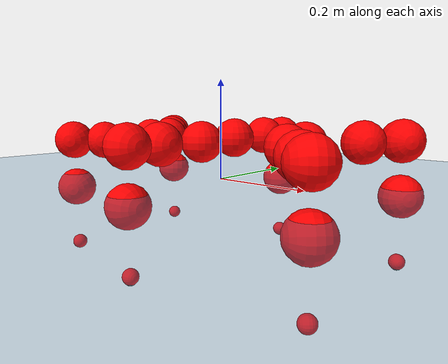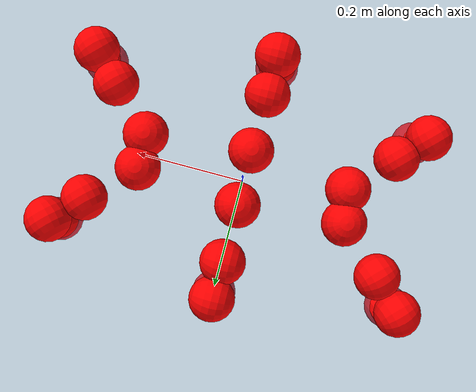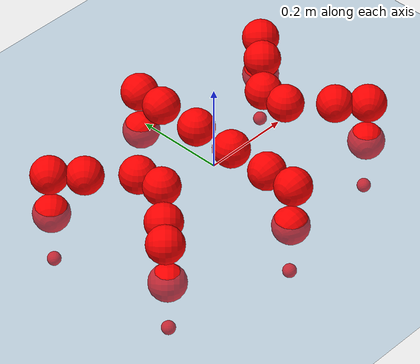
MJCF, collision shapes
<mujoco model="Golem">
  <compiler angle="radian" assetdir="assets" balanceinertia="true" inertiafromgeom="false"/>

  <option timestep="0.005" density="1.2" viscosity="2e-05"/>

  <size nkey="1"/>

  <visual>
    <quality shadowsize="8192"/>
    <map shadowclip="0.5"/>
  </visual>

  <default>
    <default class="/">
      <joint armature="0.01" damping="0.01" frictionloss="0.01"/>
      <geom contype="0" conaffinity="0" group="1" solref="-1000 -80"/>
      <site size="0.01 0.005 0.005" group="5"/>
      <general forcelimited="true" biastype="affine" gainprm="25" biasprm="0 -25 -0.5"/>
      <default class="visual">
        <geom type="mesh" group="2"/>
      </default>
      <default class="collision">
        <geom group="3"/>
      </default>
      <default class="foot">
        <geom size="0.01 0 0" condim="6" group="4" priority="1" solimp="0.015 1 0.01"/>
      </default>
      <default class="reward_collision_sphere">
        <geom group="5" rgba="1 0 0 1"/>
      </default>
    </default>
  </default>

  <asset>
    <texture type="skybox" colorspace="auto" name="//unnamed_texture_0" builtin="gradient" rgb1="0.95 0.95 0.95" rgb2="0.95 0.95 0.95" width="100" height="600"/>
    <texture type="2d" colorspace="auto" name="texplane" builtin="checker" rgb1="0.345 0.575 0.748" rgb2="0.345 0.575 0.748" markrgb="1 1 1" width="512" height="512"/>
    <material name="MatPlane" class="/" texture="texplane" texuniform="true" texrepeat="2 2" specular="0.9"/>
    <mesh name="body" class="/" file="body.stl" scale="0.001 0.001 0.001"/>
    <mesh name="coxa" class="/" file="coxa.stl" scale="0.001 0.001 0.001"/>
    <mesh name="femur" class="/" file="femur.stl" scale="0.001 0.001 0.001"/>
    <mesh name="tibia" class="/" file="tibia.stl" scale="0.001 0.001 0.001"/>
    <mesh name="tarsus" class="/" file="tarsus.stl" scale="0.001 0.001 0.001"/>
  </asset>

  <worldbody>
    <geom name="floor" class="/" size="100 100 0.125" type="plane" group="0" material="MatPlane"/>
    <light name="toplight_shadow" class="/" pos="0 0 5" dir="0.0990148 0.0990148 -0.990148" type="directional" ambient="0.04 0.04 0.04" diffuse="0.55 0.55 0.55" specular="0.12 0.12 0.12"/>
    <light name="toplight_fill" class="/" pos="0 0 5" dir="0.0990148 0.0990148 -0.990148" type="directional" castshadow="false" ambient="0.04 0.04 0.04" diffuse="0.3 0.3 0.3" specular="0.08 0.08 0.08"/>
    <body name="trunk" pos="-0.00278164 -0.000743192 0.00019331" quat="1 -4.18924e-05 -0.000277081 -8.01516e-05">
      <inertial pos="0.00318051 -0.000469524 -0.000998982" quat="0.99994 -0.00270071 -0.000263611 -0.0105873" mass="3.88765" diaginertia="0.0223867 0.00114529 0.0268836"/>
      <joint name="//unnamed_joint_0" type="free"/>
      <geom name="//unnamed_geom_1" class="/" pos="0 0 0.0776398" quat="1 0 0 0" type="mesh" rgba="0.9 0.9 0.9 1" mesh="body"/>
      <site name="imu" class="/" pos="0.149365 0.00198257 0.130892" size="0.0101126"/>
      <camera name="track" class="/" pos="0 -1.29191 0" quat="0.707107 0.707107 0 0" mode="trackcom"/>
      <camera name="ego_camera" class="/" pos="0.152713 0 0.121312" quat="-0.5 -0.5 0.5 0.5"/>
      <body name="coxa_RR" pos="-0.205116 -0.0542087 0.0772309" quat="0.382579 5.51985e-05 -5.33192e-05 -0.923923">
        <inertial pos="0.000411834 4.85163e-06 6.57773e-05" quat="0.999984 0.0048149 -0.00278195 0.00141202" mass="0.210899" diaginertia="0.0220451 0.00115598 0.0274276"/>
        <joint name="coxa_joint_RR" class="/" pos="0 0 0" axis="0.00716741 0.00461838 -0.999964" stiffness="0.00399493" range="-3.13332 3.09067" armature="0.00870043" damping="0.00388453" frictionloss="0.0101169"/>
        <geom name="//unnamed_geom_2" class="/" type="mesh" rgba="0.2 0.2 0.2 1" mesh="coxa"/>
        <geom name="//unnamed_geom_3" class="reward_collision_sphere" size="0.0404506" pos="-0.0352415 0 0"/>
        <body name="femur_RR" pos="0.0666467 0.00350034 -0.00545224" quat="0.500106 -0.499517 0.499866 0.500511">
          <inertial pos="-0.0016624 0.00245201 -0.00281266" quat="1 -0.000577888 -0.000603355 0.000189842" mass="0.210117" diaginertia="0.0226547 0.00112498 0.0263665"/>
          <joint name="femur_joint_RR" class="/" pos="0 0 0" axis="0.00172995 0.000912816 -0.999998" range="-3.10578 3.12688" armature="0.00895242" damping="0.0188166" frictionloss="0.011254"/>
          <geom name="//unnamed_geom_4" class="/" type="mesh" rgba="0.9 0.9 0.9 1" mesh="femur"/>
          <geom name="//unnamed_geom_5" class="reward_collision_sphere" size="0.0404506"/>
          <body name="tibia_RR" pos="-0.00101273 -0.0676663 0.00252163" quat="-0.000775972 0.999999 0.000998159 1.54586e-05">
            <inertial pos="-0.00114488 -0.00230033 0.000211178" quat="0.999949 -0.00356015 -0.00100979 0.00936205" mass="0.207372" diaginertia="0.0216132 0.00112097 0.0259494"/>
            <joint name="tibia_joint_RR" class="/" pos="0 0 0" axis="0.0099898 0.00855815 0.999913" stiffness="0.0106639" range="-3.14221 3.08495" armature="0.00914465" damping="0.000743145" frictionloss="0.00993569"/>
            <geom name="//unnamed_geom_6" class="/" type="mesh" rgba="0.2 0.2 0.2 1" mesh="tibia"/>
            <geom name="//unnamed_geom_7" class="reward_collision_sphere" size="0.0404506"/>
            <body name="tarsus_RR" pos="0.104358 -0.00218189 -0.00311436" quat="1 -0.000819803 8.95693e-05 5.14635e-05">
              <inertial pos="0.0720646 0.000979179 -0.00204689" quat="0.497276 0.499653 0.510159 0.492748" mass="0.207237" diaginertia="0.0228046 0.00117402 0.0266657"/>
              <joint name="tarsus_joint_RR" class="/" pos="0 0 0" axis="0.00369026 -0.00273685 0.999989" stiffness="0.00817218" range="-3.13541 3.13843" armature="0.0112754" damping="0.0124353" frictionloss="0.0110324"/>
              <geom name="//unnamed_geom_8" class="/" type="mesh" rgba="0.9 0.9 0.9 1" mesh="tarsus"/>
              <geom name="foot_1" class="foot" size="0.00908223" pos="0.131568 0 0" quat="0 -0.707107 0 0.707107"/>
              <geom name="//unnamed_geom_10" class="reward_collision_sphere" size="0.0404506"/>
              <geom name="//unnamed_geom_11" class="reward_collision_sphere" size="0.015169" pos="0.126282 0 0"/>
              <site name="foot_1" class="foot" pos="0.131568 0 0" quat="0 -0.707107 0 0.707107" size="0.0101126"/>
            </body>
          </body>
        </body>
      </body>
      <body name="coxa_RM" pos="0.000859656 -0.0867614 0.0785497" quat="0.707277 4.47947e-05 0.000141184 -0.706936">
        <inertial pos="-0.00106969 0.000231503 -0.00235721" quat="0.999999 0.00046466 -0.000972784 0.000511076" mass="0.200321" diaginertia="0.0224135 0.0010964 0.0250367"/>
        <joint name="coxa_joint_RM" class="/" pos="0 0 0" axis="0.00249019 -0.00141156 -0.999996" range="-3.1258 3.13877" armature="0.00877686" damping="0.0236016" frictionloss="0.0101534"/>
        <geom name="//unnamed_geom_12" class="/" type="mesh" rgba="0.2 0.2 0.2 1" mesh="coxa"/>
        <geom name="//unnamed_geom_13" class="reward_collision_sphere" size="0.0404506" pos="-0.0352415 0 0"/>
        <body name="femur_RM" pos="0.0667427 -0.00262184 0.0020226" quat="0.499879 -0.500343 0.49973 0.500048">
          <inertial pos="0.00250946 -0.00293327 0.00242051" quat="0.999986 0.00304 -0.00342224 0.00251058" mass="0.212291" diaginertia="0.0229024 0.00112178 0.0270391"/>
          <joint name="femur_joint_RM" class="/" pos="0 0 0" axis="4.81578e-05 -0.00506981 -0.999987" stiffness="0.00191465" range="-3.12256 3.1409" armature="0.0102386" damping="0.00641006" frictionloss="0.00877546"/>
          <geom name="//unnamed_geom_14" class="/" type="mesh" rgba="0.9 0.9 0.9 1" mesh="femur"/>
          <geom name="//unnamed_geom_15" class="reward_collision_sphere" size="0.0404506"/>
          <body name="tibia_RM" pos="-0.00144735 -0.0715826 0.000218894" quat="0.000246497 1 0.00012591 -4.66158e-05">
            <inertial pos="-0.00285592 -0.00120356 -0.000971124" quat="0.999976 0.00450041 0.00485461 0.00192759" mass="0.206439" diaginertia="0.0220795 0.00112729 0.0271559"/>
            <joint name="tibia_joint_RM" class="/" pos="0 0 0" axis="-0.00149022 -0.0130744 0.999913" range="-3.0936 3.1664" armature="0.0114914" damping="0.00908845" frictionloss="0.00967007"/>
            <geom name="//unnamed_geom_16" class="/" type="mesh" rgba="0.2 0.2 0.2 1" mesh="tibia"/>
            <geom name="//unnamed_geom_17" class="reward_collision_sphere" size="0.0404506"/>
            <body name="tarsus_RM" pos="0.103471 -0.000358246 0.00342308" quat="0.999999 0.000905317 0.000426287 -0.000388">
              <inertial pos="0.0732138 -0.000181171 0.00295845" quat="0.499934 0.5 0.500012 0.500055" mass="0.202898" diaginertia="0.0217972 0.00111077 0.0246578"/>
              <joint name="tarsus_joint_RM" class="/" pos="0 0 0" axis="0.0132059 -0.00549691 0.999898" range="-3.12225 3.11752" armature="0.0115183" damping="0.0153824" frictionloss="0.0100417"/>
              <geom name="//unnamed_geom_18" class="/" type="mesh" rgba="0.9 0.9 0.9 1" mesh="tarsus"/>
              <geom name="foot_2" class="foot" size="0.0111405" pos="0.131568 0 0" quat="0 -0.707107 0 0.707107"/>
              <geom name="//unnamed_geom_20" class="reward_collision_sphere" size="0.0404506"/>
              <geom name="//unnamed_geom_21" class="reward_collision_sphere" size="0.015169" pos="0.126282 0 0"/>
              <site name="foot_2" class="foot" pos="0.131568 0 0" quat="0 -0.707107 0 0.707107" size="0.0101126"/>
            </body>
          </body>
        </body>
      </body>
      <body name="coxa_RF" pos="0.211697 -0.0566595 0.0788469" quat="0.923874 0.00117395 -3.76319e-05 -0.382695">
        <inertial pos="-0.000842301 0.00159229 0.00159292" quat="0.999908 -0.00679595 0.00508293 0.0106277" mass="0.209087" diaginertia="0.0213068 0.00112547 0.0250552"/>
        <joint name="coxa_joint_RF" class="/" pos="0 0 0" axis="-0.00750579 0.00581018 -0.999955" range="-3.19236 3.14149" armature="0.00915103" damping="0.0221774" frictionloss="0.0114197"/>
        <geom name="//unnamed_geom_22" class="/" type="mesh" rgba="0.2 0.2 0.2 1" mesh="coxa"/>
        <geom name="//unnamed_geom_23" class="reward_collision_sphere" size="0.0404506" pos="-0.0352415 0 0"/>
        <body name="femur_RF" pos="0.0695288 0.000419531 -0.00300771" quat="0.500331 -0.499621 0.499901 0.500147">
          <inertial pos="-0.000274525 -0.00298601 7.12487e-05" quat="1 -2.40795e-05 -0.000268472 -0.00026768" mass="0.205828" diaginertia="0.0226784 0.00110609 0.0256872"/>
          <joint name="femur_joint_RF" class="/" pos="0 0 0" axis="-0.00229305 -0.00197772 -0.999995" stiffness="0.00664453" range="-3.08622 3.13344" armature="0.0106829" damping="0" frictionloss="0.0104606"/>
          <geom name="//unnamed_geom_24" class="/" type="mesh" rgba="0.9 0.9 0.9 1" mesh="femur"/>
          <geom name="//unnamed_geom_25" class="reward_collision_sphere" size="0.0404506"/>
          <body name="tibia_RF" pos="-0.000327215 -0.0694577 -0.000303107" quat="0.000187616 1 0.000129857 -0.000112267">
            <inertial pos="-0.000262171 -0.00122326 -0.000203135" quat="0.99999 -0.00312684 -0.00242708 0.0018933" mass="0.199308" diaginertia="0.0211751 0.00108816 0.0253999"/>
            <joint name="tibia_joint_RF" class="/" pos="0 0 0" axis="0.0126197 -0.00603232 0.999902" range="-3.08908 3.12424" armature="0.00977374" damping="0" frictionloss="0.0114726"/>
            <geom name="//unnamed_geom_26" class="/" type="mesh" rgba="0.2 0.2 0.2 1" mesh="tibia"/>
            <geom name="//unnamed_geom_27" class="reward_collision_sphere" size="0.0404506"/>
            <body name="tarsus_RF" pos="0.103824 0.000345632 -0.000705199" quat="0.999999 0.000504774 0.000902329 0.000381062">
              <inertial pos="0.0697396 -0.00274956 0.00110611" quat="0.499172 0.50415 0.500619 0.496025" mass="0.202854" diaginertia="0.0216644 0.00111629 0.0254515"/>
              <joint name="tarsus_joint_RF" class="/" pos="0 0 0" axis="0.00901023 -0.0106603 0.999903" range="-3.17386 3.1492" armature="0.0101897" damping="0" frictionloss="0.00950135"/>
              <geom name="//unnamed_geom_28" class="/" type="mesh" rgba="0.9 0.9 0.9 1" mesh="tarsus"/>
              <geom name="foot_3" class="foot" size="0.0102189" pos="0.131568 0 0" quat="0 -0.707107 0 0.707107"/>
              <geom name="//unnamed_geom_30" class="reward_collision_sphere" size="0.0404506"/>
              <geom name="//unnamed_geom_31" class="reward_collision_sphere" size="0.015169" pos="0.126282 0 0"/>
              <site name="foot_3" class="foot" pos="0.131568 0 0" quat="0 -0.707107 0 0.707107" size="0.0101126"/>
            </body>
          </body>
        </body>
      </body>
      <body name="coxa_LR" pos="-0.213047 0.0548302 0.0776056" quat="0.382843 -0.000696609 0.000559301 0.923813">
        <inertial pos="0.00290053 -0.000116438 0.000977044" quat="1 1.4103e-06 -2.6093e-06 -4.28363e-07" mass="0.202249" diaginertia="0.0226599 0.00115691 0.0263246"/>
        <joint name="coxa_joint_LR" class="/" pos="0 0 0" axis="0.0151313 0.0129399 -0.999802" stiffness="0.0142308" range="-3.12401 3.19397" armature="0.0110408" damping="0.00287123" frictionloss="0.0113899"/>
        <geom name="//unnamed_geom_32" class="/" type="mesh" rgba="0.2 0.2 0.2 1" mesh="coxa"/>
        <geom name="//unnamed_geom_33" class="reward_collision_sphere" size="0.0404506" pos="-0.0352415 0 0"/>
        <body name="femur_LR" pos="0.0729708 0.00212427 0.00183414" quat="0.499578 -0.500756 0.500173 0.499492">
          <inertial pos="-0.00116159 -0.00020267 0.000219887" quat="1 7.49376e-05 2.8909e-05 0.00013147" mass="0.214889" diaginertia="0.023952 0.00117574 0.0263765"/>
          <joint name="femur_joint_LR" class="/" pos="0 0 0" axis="-0.000504794 0.00067245 1" range="-3.18503 3.09982" armature="0.00935855" damping="0" frictionloss="0.00944021"/>
          <geom name="//unnamed_geom_34" class="/" type="mesh" rgba="0.9 0.9 0.9 1" mesh="femur"/>
          <geom name="//unnamed_geom_35" class="reward_collision_sphere" size="0.0404506"/>
          <body name="tibia_LR" pos="-0.000862668 -0.0720883 -0.00249581" quat="-0.000121094 1 -1.74201e-05 0.000389904">
            <inertial pos="0.000315019 -0.000213756 0.000601841" quat="0.999903 -0.00723162 0.00133401 -0.011821" mass="0.19632" diaginertia="0.0210362 0.00113118 0.0256162"/>
            <joint name="tibia_joint_LR" class="/" pos="0 0 0" axis="-0.00215688 -0.00203477 -0.999996" stiffness="0.00289055" range="-3.13765 3.12311" armature="0.0101898" damping="0.0155165" frictionloss="0.0112732"/>
            <geom name="//unnamed_geom_36" class="/" type="mesh" rgba="0.2 0.2 0.2 1" mesh="tibia"/>
            <geom name="//unnamed_geom_37" class="reward_collision_sphere" size="0.0404506"/>
            <body name="tarsus_LR" pos="0.101975 -0.000230112 -0.00215084" quat="0.999999 0.000634675 0.000835628 0.000601781">
              <inertial pos="0.0667726 0.0033018 -0.0018254" quat="0.499711 0.496902 0.503443 0.499922" mass="0.200519" diaginertia="0.0221195 0.00116305 0.0268386"/>
              <joint name="tarsus_joint_LR" class="/" pos="0 0 0" axis="0.000660539 0.000755363 -0.999999" range="-3.17868 3.14062" armature="0.00939601" damping="0.0303647" frictionloss="0.0106026"/>
              <geom name="//unnamed_geom_38" class="/" type="mesh" rgba="0.9 0.9 0.9 1" mesh="tarsus"/>
              <geom name="foot_4" class="foot" size="0.010456" pos="0.131568 0 0" quat="0.707107 0 -0.707107 0"/>
              <geom name="//unnamed_geom_40" class="reward_collision_sphere" size="0.0404506"/>
              <geom name="//unnamed_geom_41" class="reward_collision_sphere" size="0.015169" pos="0.126282 0 0"/>
              <site name="foot_4" class="foot" pos="0.131568 0 0" quat="0.707107 0 -0.707107 0" size="0.0101126"/>
            </body>
          </body>
        </body>
      </body>
      <body name="coxa_LM" pos="-0.000525383 0.0821627 0.0810409" quat="0.706991 2.51231e-05 -0.000551412 0.707222">
        <inertial pos="0.00282479 0.0026209 0.00308514" quat="0.999904 0.00218633 -0.01226 0.00614641" mass="0.20519" diaginertia="0.0229857 0.00109505 0.027177"/>
        <joint name="coxa_joint_LM" class="/" pos="0 0 0" axis="-0.0023844 0.000128318 -0.999997" range="-3.08298 3.12632" armature="0.0102125" damping="0.00501646" frictionloss="0.0104101"/>
        <geom name="//unnamed_geom_42" class="/" type="mesh" rgba="0.2 0.2 0.2 1" mesh="coxa"/>
        <geom name="//unnamed_geom_43" class="reward_collision_sphere" size="0.0404506" pos="-0.0352415 0 0"/>
        <body name="femur_LM" pos="0.0666403 0.000281346 0.000148131" quat="0.499701 -0.499723 0.500266 0.50031">
          <inertial pos="0.00206343 -0.000803943 -0.00231929" quat="0.99999 -0.00417241 0.00125644 0.000634935" mass="0.211653" diaginertia="0.0224245 0.00114967 0.0274155"/>
          <joint name="femur_joint_LM" class="/" pos="0 0 0" axis="-0.000530342 -0.00946447 0.999955" range="-3.14771 3.12946" armature="0.0112483" damping="0.0151986" frictionloss="0.011273"/>
          <geom name="//unnamed_geom_44" class="/" type="mesh" rgba="0.9 0.9 0.9 1" mesh="femur"/>
          <geom name="//unnamed_geom_45" class="reward_collision_sphere" size="0.0404506"/>
          <body name="tibia_LM" pos="0.000765287 -0.0662819 -0.00181502" quat="0.000945286 0.999999 -0.000732518 0.000304189">
            <inertial pos="0.00250735 0.00227378 -0.00106167" quat="0.999915 0.00517699 0.0062279 -0.0101808" mass="0.220983" diaginertia="0.0233208 0.00117072 0.0280449"/>
            <joint name="tibia_joint_LM" class="/" pos="0 0 0" axis="0.0118414 -0.00243676 -0.999927" stiffness="0.00795916" range="-3.12268 3.1345" armature="0.00972825" damping="0.00835852" frictionloss="0.0106075"/>
            <geom name="//unnamed_geom_46" class="/" type="mesh" rgba="0.2 0.2 0.2 1" mesh="tibia"/>
            <geom name="//unnamed_geom_47" class="reward_collision_sphere" size="0.0404506"/>
            <body name="tarsus_LM" pos="0.103173 -0.0018823 0.000455513" quat="1 -3.0129e-06 9.06096e-06 3.24853e-06">
              <inertial pos="0.0704379 0.000967764 0.00159472" quat="0.491974 0.508796 0.504654 0.494381" mass="0.200172" diaginertia="0.0225611 0.00115031 0.0264497"/>
              <joint name="tarsus_joint_LM" class="/" pos="0 0 0" axis="0.00185111 0.000181454 -0.999998" range="-3.19006 3.11615" armature="0.010098" damping="0.0193423" frictionloss="0.0102456"/>
              <geom name="//unnamed_geom_48" class="/" type="mesh" rgba="0.9 0.9 0.9 1" mesh="tarsus"/>
              <geom name="foot_5" class="foot" size="0.0105332" pos="0.131568 0 0" quat="0.707107 0 -0.707107 0"/>
              <geom name="//unnamed_geom_50" class="reward_collision_sphere" size="0.0404506"/>
              <geom name="//unnamed_geom_51" class="reward_collision_sphere" size="0.015169" pos="0.126282 0 0"/>
              <site name="foot_5" class="foot" pos="0.131568 0 0" quat="0.707107 0 -0.707107 0" size="0.0101126"/>
            </body>
          </body>
        </body>
      </body>
      <body name="coxa_LF" pos="0.209425 0.0532257 0.0802766" quat="0.923858 8.70494e-05 -1.25554e-05 0.382736">
        <inertial pos="-0.000120802 -0.000457478 0.00179679" quat="0.999949 0.00614111 0.00629404 0.00498543" mass="0.200465" diaginertia="0.0222955 0.00110654 0.0252302"/>
        <joint name="coxa_joint_LF" class="/" pos="0 0 0" axis="-0.00786736 0.00121441 -0.999968" range="-3.11719 3.13953" armature="0.0101321" damping="0.0315893" frictionloss="0.009365"/>
        <geom name="//unnamed_geom_52" class="/" type="mesh" rgba="0.2 0.2 0.2 1" mesh="coxa"/>
        <geom name="//unnamed_geom_53" class="reward_collision_sphere" size="0.0404506" pos="-0.0352415 0 0"/>
        <body name="femur_LF" pos="0.0708663 -0.00110496 0.00220749" quat="0.499761 -0.499292 0.501179 0.499765">
          <inertial pos="0.000354617 -0.000614316 0.00044177" quat="0.999934 -0.00274004 -0.000290298 -0.0111717" mass="0.202792" diaginertia="0.021827 0.0010967 0.0263931"/>
          <joint name="femur_joint_LF" class="/" pos="0 0 0" axis="0.00631955 -0.00903095 0.999939" range="-3.13696 3.13405" armature="0.0102719" damping="0" frictionloss="0.0105983"/>
          <geom name="//unnamed_geom_54" class="/" type="mesh" rgba="0.9 0.9 0.9 1" mesh="femur"/>
          <geom name="//unnamed_geom_55" class="reward_collision_sphere" size="0.0404506"/>
          <body name="tibia_LF" pos="-0.00258523 -0.0725548 0.000948912" quat="-2.47001e-05 1 -5.93906e-05 4.37041e-05">
            <inertial pos="0.00119941 -0.00247405 -0.00113895" quat="1 -0.00030422 -0.000444072 3.50774e-05" mass="0.206548" diaginertia="0.0234631 0.0011179 0.026208"/>
            <joint name="tibia_joint_LF" class="/" pos="0 0 0" axis="-0.00146847 -0.000104715 -0.999999" range="-3.16336 3.19416" armature="0.00999205" damping="0.00423745" frictionloss="0.010069"/>
            <geom name="//unnamed_geom_56" class="/" type="mesh" rgba="0.2 0.2 0.2 1" mesh="tibia"/>
            <geom name="//unnamed_geom_57" class="reward_collision_sphere" size="0.0404506"/>
            <body name="tarsus_LF" pos="0.102513 0.00201857 0.00121076" quat="0.999999 -0.000651797 -0.000219331 0.00124165">
              <inertial pos="0.0709502 -0.00170441 -0.00102784" quat="0.500202 0.499541 0.499992 0.500264" mass="0.194922" diaginertia="0.0210697 0.00106042 0.0255336"/>
              <joint name="tarsus_joint_LF" class="/" pos="0 0 0" axis="0.000615431 -0.00565636 -0.999984" stiffness="0.00132477" range="-3.14519 3.10895" armature="0.0105726" damping="0.0310193" frictionloss="0.00967352"/>
              <geom name="//unnamed_geom_58" class="/" type="mesh" rgba="0.9 0.9 0.9 1" mesh="tarsus"/>
              <geom name="foot_6" class="foot" size="0.0110355" pos="0.131568 0 0" quat="0.707107 0 -0.707107 0"/>
              <geom name="//unnamed_geom_60" class="reward_collision_sphere" size="0.0404506"/>
              <geom name="//unnamed_geom_61" class="reward_collision_sphere" size="0.015169" pos="0.126282 0 0"/>
              <site name="foot_6" class="foot" pos="0.131568 0 0" quat="0.707107 0 -0.707107 0" size="0.0101126"/>
            </body>
          </body>
        </body>
      </body>
    </body>
  </worldbody>

  <contact>
    <pair class="/" geom1="floor" geom2="foot_1" name="//unnamed_contact_0"/>
    <pair class="/" geom1="floor" geom2="foot_2" name="//unnamed_contact_1"/>
    <pair class="/" geom1="floor" geom2="foot_3" name="//unnamed_contact_2"/>
    <pair class="/" geom1="floor" geom2="foot_4" name="//unnamed_contact_3"/>
    <pair class="/" geom1="floor" geom2="foot_5" name="//unnamed_contact_4"/>
    <pair class="/" geom1="floor" geom2="foot_6" name="//unnamed_contact_5"/>
  </contact>

  <actuator>
    <general name="coxa_joint_RR" class="/" joint="coxa_joint_RR" forcerange="-8.09328 8.09328" gainprm="24.408" biasprm="0 -24.408 -0.529139"/>
    <general name="femur_joint_RR" class="/" joint="femur_joint_RR" forcerange="-7.95213 7.95213" gainprm="24.408" biasprm="0 -24.408 -0.529139"/>
    <general name="tibia_joint_RR" class="/" joint="tibia_joint_RR" forcerange="-6.86451 6.86451" gainprm="24.408" biasprm="0 -24.408 -0.529139"/>
    <general name="tarsus_joint_RR" class="/" joint="tarsus_joint_RR" forcerange="-6.97171 6.97171" gainprm="24.408" biasprm="0 -24.408 -0.529139"/>
    <general name="coxa_joint_RM" class="/" joint="coxa_joint_RM" forcerange="-7.26815 7.26815" gainprm="24.408" biasprm="0 -24.408 -0.529139"/>
    <general name="femur_joint_RM" class="/" joint="femur_joint_RM" forcerange="-7.64299 7.64299" gainprm="24.408" biasprm="0 -24.408 -0.529139"/>
    <general name="tibia_joint_RM" class="/" joint="tibia_joint_RM" forcerange="-7.55213 7.55213" gainprm="24.408" biasprm="0 -24.408 -0.529139"/>
    <general name="tarsus_joint_RM" class="/" joint="tarsus_joint_RM" forcerange="-7.6396 7.6396" gainprm="24.408" biasprm="0 -24.408 -0.529139"/>
    <general name="coxa_joint_RF" class="/" joint="coxa_joint_RF" forcerange="-7.27874 7.27874" gainprm="24.408" biasprm="0 -24.408 -0.529139"/>
    <general name="femur_joint_RF" class="/" joint="femur_joint_RF" forcerange="-7.08577 7.08577" gainprm="24.408" biasprm="0 -24.408 -0.529139"/>
    <general name="tibia_joint_RF" class="/" joint="tibia_joint_RF" forcerange="-7.43656 7.43656" gainprm="24.408" biasprm="0 -24.408 -0.529139"/>
    <general name="tarsus_joint_RF" class="/" joint="tarsus_joint_RF" forcerange="-7.58314 7.58314" gainprm="24.408" biasprm="0 -24.408 -0.529139"/>
    <general name="coxa_joint_LR" class="/" joint="coxa_joint_LR" forcerange="-7.50551 7.50551" gainprm="24.408" biasprm="0 -24.408 -0.529139"/>
    <general name="femur_joint_LR" class="/" joint="femur_joint_LR" forcerange="-7.18808 7.18808" gainprm="24.408" biasprm="0 -24.408 -0.529139"/>
    <general name="tibia_joint_LR" class="/" joint="tibia_joint_LR" forcerange="-7.17303 7.17303" gainprm="24.408" biasprm="0 -24.408 -0.529139"/>
    <general name="tarsus_joint_LR" class="/" joint="tarsus_joint_LR" forcerange="-7.4362 7.4362" gainprm="24.408" biasprm="0 -24.408 -0.529139"/>
    <general name="coxa_joint_LM" class="/" joint="coxa_joint_LM" forcerange="-7.13535 7.13535" gainprm="24.408" biasprm="0 -24.408 -0.529139"/>
    <general name="femur_joint_LM" class="/" joint="femur_joint_LM" forcerange="-7.41786 7.41786" gainprm="24.408" biasprm="0 -24.408 -0.529139"/>
    <general name="tibia_joint_LM" class="/" joint="tibia_joint_LM" forcerange="-7.32373 7.32373" gainprm="24.408" biasprm="0 -24.408 -0.529139"/>
    <general name="tarsus_joint_LM" class="/" joint="tarsus_joint_LM" forcerange="-6.63776 6.63776" gainprm="24.408" biasprm="0 -24.408 -0.529139"/>
    <general name="coxa_joint_LF" class="/" joint="coxa_joint_LF" forcerange="-7.26614 7.26614" gainprm="24.408" biasprm="0 -24.408 -0.529139"/>
    <general name="femur_joint_LF" class="/" joint="femur_joint_LF" forcerange="-7.63392 7.63392" gainprm="24.408" biasprm="0 -24.408 -0.529139"/>
    <general name="tibia_joint_LF" class="/" joint="tibia_joint_LF" forcerange="-7.75721 7.75721" gainprm="24.408" biasprm="0 -24.408 -0.529139"/>
    <general name="tarsus_joint_LF" class="/" joint="tarsus_joint_LF" forcerange="-7.30843 7.30843" gainprm="24.408" biasprm="0 -24.408 -0.529139"/>
  </actuator>

  <sensor>
    <gyro site="imu" name="imu_angular_velocity"/>
    <velocimeter site="imu" name="imu_linear_velocity"/>
    <framelinvel objtype="site" objname="foot_1" name="foot_1_global_linear_velocity"/>
    <framelinvel objtype="site" objname="foot_2" name="foot_2_global_linear_velocity"/>
    <framelinvel objtype="site" objname="foot_3" name="foot_3_global_linear_velocity"/>
    <framelinvel objtype="site" objname="foot_4" name="foot_4_global_linear_velocity"/>
    <framelinvel objtype="site" objname="foot_5" name="foot_5_global_linear_velocity"/>
    <framelinvel objtype="site" objname="foot_6" name="foot_6_global_linear_velocity"/>
  </sensor>

  <keyframe>
    <key name="home" qpos="0 0 0.1457 1 0 0 0 0 0 0 0 0 0 0 0 0 0 0 0 0 0 0 0 0 0 0 0 0 0 0 0"/>
  </keyframe>
</mujoco>
